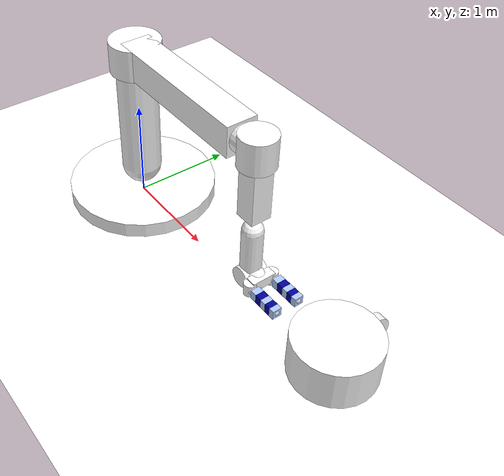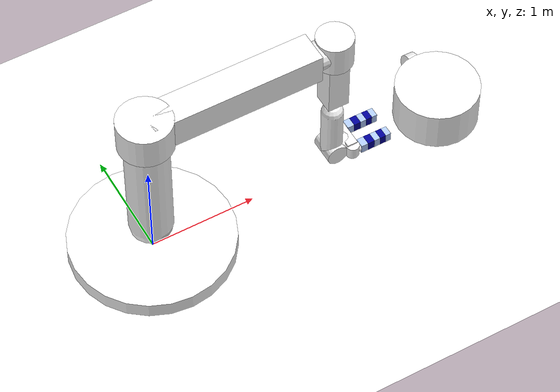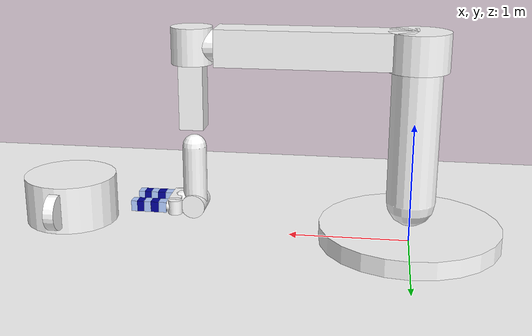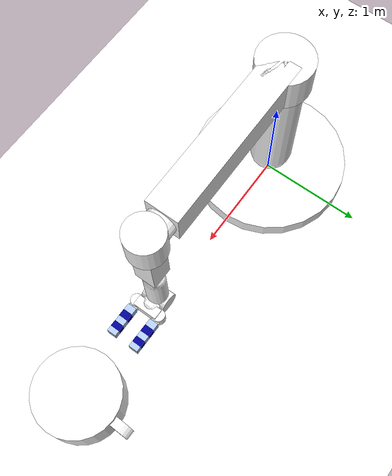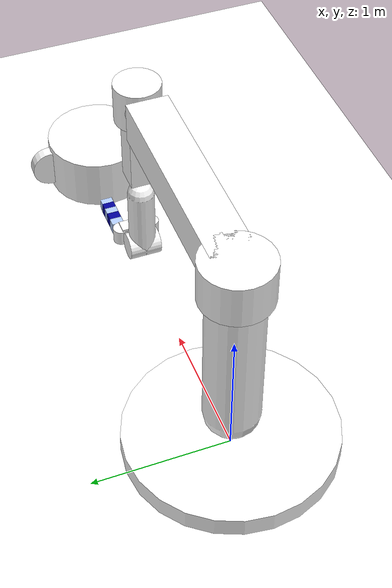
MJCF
<mujoco>
    <compiler angle="degree" />
    <default>
        <geom condim='6' rgba='1 1 1 1' material="muscle_one_mat" friction="0.8 0.5 0.001" density="3000"/>
        <joint limited="true"/>
    </default>

    <option tolerance = "1e-18" cone = "elliptic" timestep = "0.001"/>

    <asset>
        <texture type="skybox" builtin="gradient" width="1024" height="1024" rgb1=".7 .7 .7"
            rgb2="1 1 1"/>
        <texture name="texgeom" type="cube" builtin="flat" mark="cross" width="127" height="1278"
            rgb1="0.8 0.6 0.4" rgb2="0.8 0.6 0.4" markrgb="1 1 1" random="0.01"/>
        <texture name="texplane" type="2d" builtin="checker" rgb1=".97 .97 .97" rgb2="1 1 1"
            width="512" height="512"/>

        <texture name="table_texture" type="2d" builtin="flat" rgb1="0.7 0.8 1" width="128" height="128"/>
        <texture name="object_texture" type="2d" builtin="flat" rgb1="0.2 0.8 0.5" width="128" height="128"/>
        <texture name="red_bull_text" type="cube" builtin="none" rgb1=".6 .6 .6" filedown="/Users/Petros/Desktop/red_bull.png"/>
        <texture name="muscle_one_text" type="cube" builtin="checker" rgb1=".1 .1 .1" rgb2=".2 .2 .2" width="100" height="100"/>
        <texture name="muscle_one_text_joint" type="cube" builtin="checker" rgb1=".6 .6 .6" rgb2=".7 .7 .7" width="100" height="100"/>
        <texture name="duck_text" type="2d" builtin="flat" rgb1="1 0.7 0" width="128" height="128"/>
        <texture name = "wood_text" type = "2d" builtin = "none" file="/Users/Petros/Desktop/wood.png"/>
        <texture name = "laser_text" type = "2d" builtin = "flat" rgb1 = "0 0 0.6" width="128" height="128"/>

        <material name='MatPlane' reflectance='0.3' texture="texplane" texrepeat="1 1" texuniform="true"/>
        <material name='geom' texture="texgeom" texuniform="true"/>
        <material name="table_material" texture="table_texture" reflectance="0"/>
        <material name="object_material" texture="object_texture" reflectance="0"/>
        <material name="red_bull_mat" texture="red_bull_text" texuniform="false"/>
        <material name="muscle_one_mat" texture="muscle_one_text" texrepeat="4 4" texuniform="true" />
        <material name="muscle_one_mat_joint" texture="muscle_one_text_joint" texrepeat="4 4" texuniform="true" />
        <material name="duck_mat" texture="duck_text"/>
        <material name="wood_material" texture="wood_text" reflectance="0" texrepeat = "3 3"/>
        <material name = "laser_material" texture = "laser_text"/>

        <mesh file="/Users/Petros/Documents/RL_Thesis/Objects/Duck/duck0.stl" scale="0.155 0.155 0.155"/>
        <mesh file="/Users/Petros/Documents/RL_Thesis/Objects/Duck/duck1.stl" scale="0.155 0.155 0.155"/>
        <mesh file="/Users/Petros/Documents/RL_Thesis/Objects/Duck/duck2.stl" scale="0.155 0.155 0.155"/>
        <mesh file="/Users/Petros/Documents/RL_Thesis/Objects/Duck/duck3.stl" scale="0.155 0.155 0.155"/>
        <mesh file="/Users/Petros/Documents/RL_Thesis/Objects/Cup.stl" scale="0.006 0.006 0.002"/>
        <mesh file="/Users/Petros/Documents/RL_Thesis/Objects/Phone.stl" scale="0.003 0.004 0.004"/>

    </asset>

    <worldbody>
        <geom name='floor' pos='0 0 0' size='20 20 .125' type='plane' material="MatPlane" />

        <light mode='targetbodycom' directional='false' diffuse='.8 .8 .8' specular='0.3 0.3 0.3' pos='2 2 4.0' dir='0 0 -1'/>
        <light mode='targetbodycom' directional='false' diffuse='.8 .8 .8' specular='0.3 0.3 0.3' pos='2 -2 4.0' dir='0 0 -1'/>
        <light mode='targetbodycom' directional='false' diffuse='.8 .8 .8' specular='0.3 0.3 0.3' pos='-2 2 4.0' dir='0 0 -1'/>
        <light mode='targetbodycom' directional='false' diffuse='.8 .8 .8' specular='0.3 0.3 0.3' pos='-2 -2 4.0' dir='0 0 -1'/>

        <body pos = "0 0 0.00">
          <geom type="cylinder" fromto = "0 0 0 0 0 0.15" density = "100" size = "0.75"/>
          <body pos = "0 0 0.35">
            <geom type = "capsule" fromto = "0 0 0 0 0 1.1" density="3000" size="0.2"/>
            <geom type = "cylinder" fromto = "0 0 1.09 0 0 1.4" size = "0.25" material="muscle_one_mat_joint"/>
            <joint name = "j_0" type = "hinge" axis = "0 0 1" range = "-720 720"/>
              <body pos = "0 0 1.25">
                <geom type="box" size="0.8 0.15 0.15" pos="0.8 0 0" material="muscle_one_mat_joint"/>
                <body pos = "0.8 0 0">
                  <geom type = "capsule" fromto = "-0.6 0 0 1 0 0" size = "0.13"/>
                  <joint name = "j_1" type = "slide" axis = "1 0 0" range = "0 3.4"/>
                  <body pos = "1 0 0">
                    <geom type = "cylinder" fromto = "0 0 -0.15 0 0 0.15" size = "0.17" material="muscle_one_mat_joint"/>
                    <joint name = "j_2" type = "hinge" axis = "0 0 1" range = "-720 720"/>
                    <body pos = "0 0 -0.15">
                      <geom type="box" size="0.1 0.1 0.325" pos="0 0 -0.2125" material="muscle_one_mat_joint"/>
                      <body pos = "0 0 -0.6">
                        <geom type = "capsule" fromto = "0 0 -0.1 0 0 -0.6" size = "0.1"/>
                        <joint name = "j_3" type = "slide" axis = "0 0 1" range = "-0.15 0.9"/>
                        <body pos = "0 0 -0.6">
                          <geom type = "capsule" fromto = "0 0 0 0.1 0 0" size = "0.1"/>
                          <geom type = "cylinder" fromto = "0 -0.12 0 0 0.12 0" size = "0.1" material="muscle_one_mat_joint"/>
                          <joint name = "j_4" type = "hinge" axis = "0 1 0" range = "-720 720"/>
                          <body pos="0.15 0 0" name="end_effector">
                            <geom name = "end_effector_base" type="box" size="0.05 0.12 0.05" pos = "0 0 0.025"/>
                            <body pos="0 0.12 0">
                              <geom type="capsule" fromto="0 0 0 0.2 0.0 0" size="0.045"/>
                              <site name = "sensor_1_1_2" type = "box" size = "0.033 0.045 0.045" pos = "0.1 0 0" material = "table_material"/>
                              <site name = "sensor_1_1_3" type = "box" size = "0.033 0.045 0.045" pos = "0.166 0 0" material = "laser_material"/>
                              <geom type="cylinder" fromto="0 0 0.06 0 0 -0.06" size="0.06" density="3000" material="muscle_one_mat_joint"/>
                              <joint name="f_1_1" type="hinge" axis="0 0 1" range="-40 40"/>
                              <body pos = "0.2 0.0 0">
                                <geom type="capsule" fromto="0 0 0 0.13 0.0 0" size="0.045"/>
                                <site name = "sensor_1_2_1" type = "box" size = "0.029 0.045 0.045" pos = "0.029 0 0" material = "table_material"/>
                                <site name = "sensor_1_2_2" type = "box" size = "0.029 0.045 0.045" pos = "0.087 0 0" material = "laser_material"/>
                                <site name = "sensor_1_2_3" type = "box" size = "0.026 0.045 0.045" pos = "0.142 0 0" material = "table_material"/>
                                <joint name="f_1_2" type="hinge" axis="0 0 1" range="-90 0"/>
                              </body>
                            </body>
                            <body pos="0 -0.12 0">
                              <geom type="capsule" fromto="0 0 0 0.2 0 0" size="0.045"/>
                              <site name = "sensor_2_1_2" type = "box" size = "0.033 0.045 0.045" pos = "0.1 0 0" material = "table_material"/>
                              <site name = "sensor_2_1_3" type = "box" size = "0.033 0.045 0.045" pos = "0.166 0 0" material = "laser_material"/>
                              <geom type="cylinder" fromto="0 0 0.06 0 0 -0.06" size="0.06" density="3000" material="muscle_one_mat_joint"/>
                              <joint name="f_2_1" type="hinge" axis="0 0 1" range="-40 40"/>
                              <body pos = "0.2 0 0">
                                <geom type="capsule" fromto="0 0 0 0.13 0 0" size="0.045"/>
                                <site name = "sensor_2_2_1" type = "box" size = "0.029 0.045 0.045" pos = "0.029 0 0" material = "table_material"/>
                                <site name = "sensor_2_2_2" type = "box" size = "0.029 0.045 0.045" pos = "0.087 0 0" material = "laser_material"/>
                                <site name = "sensor_2_2_3" type = "box" size = "0.026 0.045 0.045" pos = "0.142 0 0" material = "table_material"/>
                                <joint name="f_2_2" type="hinge" axis="0 0 1" range="0 90"/>
                              </body>
                            </body>
                          </body>
                        </body>
                      </body>
                    </body>
                  </body>
                </body>
              </body>
          </body>
        </body>

        <body name="red_bull" pos="2.9 0.0 0.25">
          <freejoint/>
          <geom name = "red_bull" type="cylinder" size="0.39 0.2" material="object_material" density="100"/>
          <geom type = "cylinder" size = "0.15 0.045" density = "400" pos = "0 0.4 0" material="object_material" quat = "0.5145998 0.4997868 0.4997868 0.4854002"/>
        </body>

    </worldbody>

    <sensor>
      <touch name = "touch_1_1_2" site = "sensor_1_1_2"/>
      <touch name = "touch_1_1_3" site = "sensor_1_1_3"/>
      <touch name = "touch_1_2_1" site = "sensor_1_2_1"/>
      <touch name = "touch_1_2_2" site = "sensor_1_2_2"/>
      <touch name = "touch_1_2_3" site = "sensor_1_2_3"/>
      <touch name = "touch_2_1_2" site = "sensor_2_1_2"/>
      <touch name = "touch_2_1_3" site = "sensor_2_1_3"/>
      <touch name = "touch_2_2_1" site = "sensor_2_2_1"/>
      <touch name = "touch_2_2_2" site = "sensor_2_2_2"/>
      <touch name = "touch_2_2_3" site = "sensor_2_2_3"/>

    </sensor>

    <actuator>
      <motor gear="200" joint="j_0"/>
      <motor gear="200" joint="j_1"/>
      <motor gear="200" joint="j_2"/>
      <motor gear="200" joint="j_3"/>
      <motor gear="200" joint="j_4"/>

      <motor joint="f_1_1"/>
      <motor joint="f_2_1"/>
      <motor joint="f_1_2"/>
      <motor joint="f_2_2"/>
    </actuator>

</mujoco>
